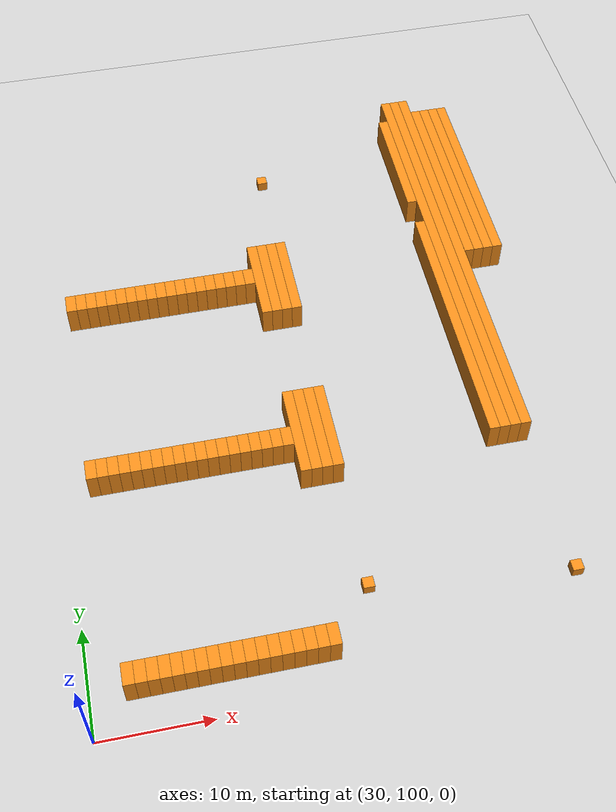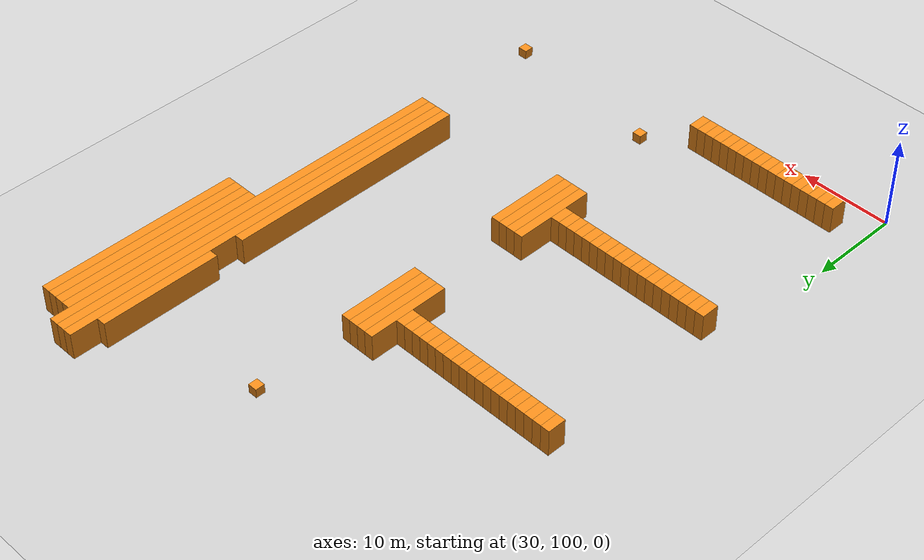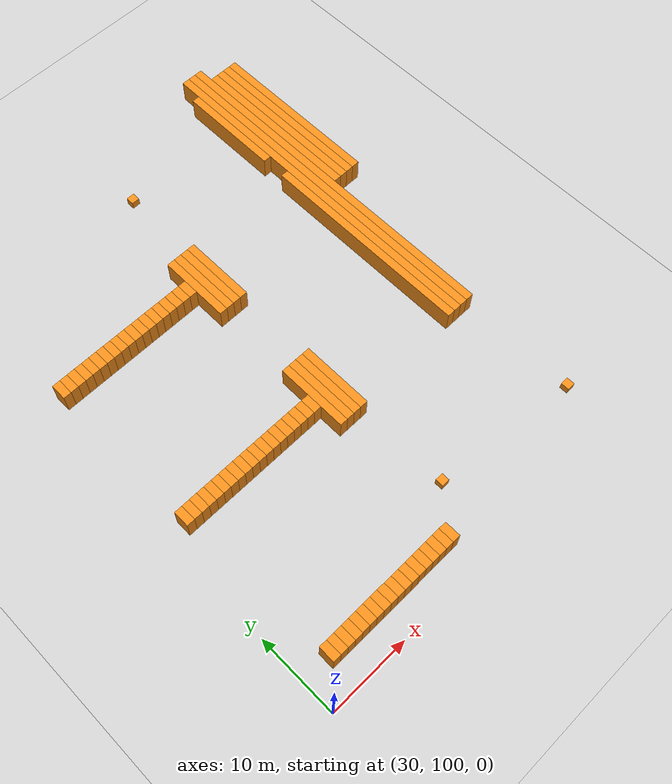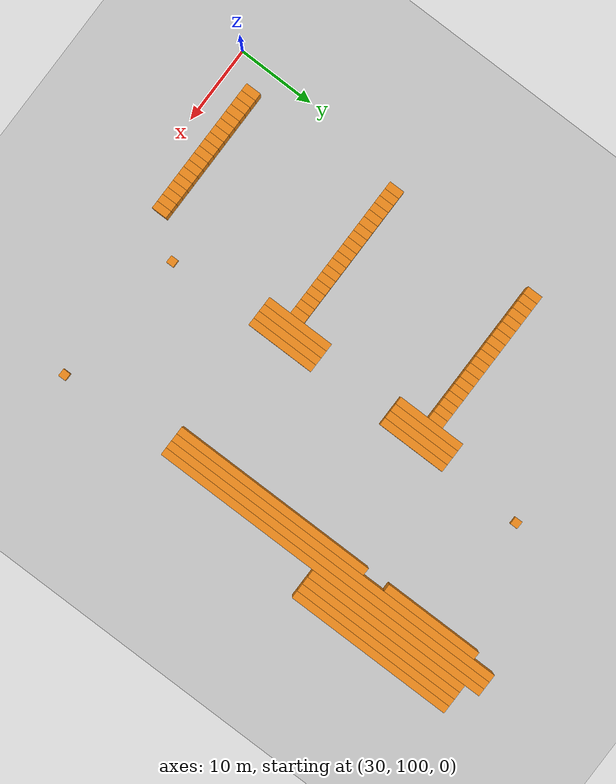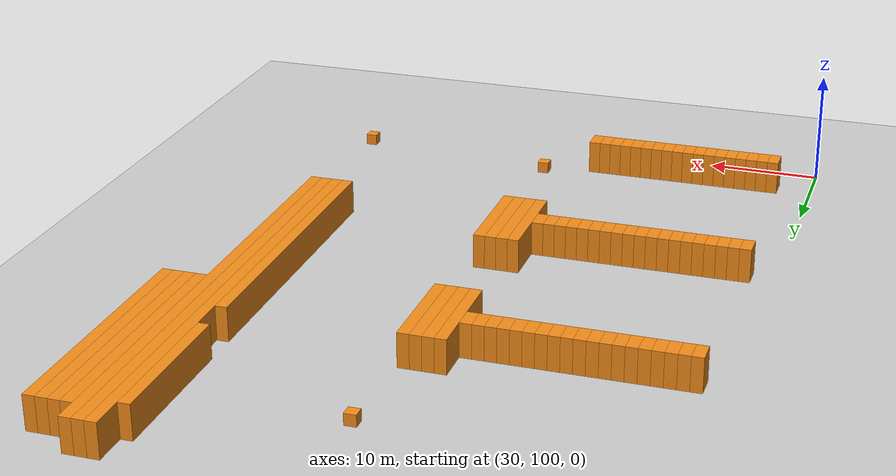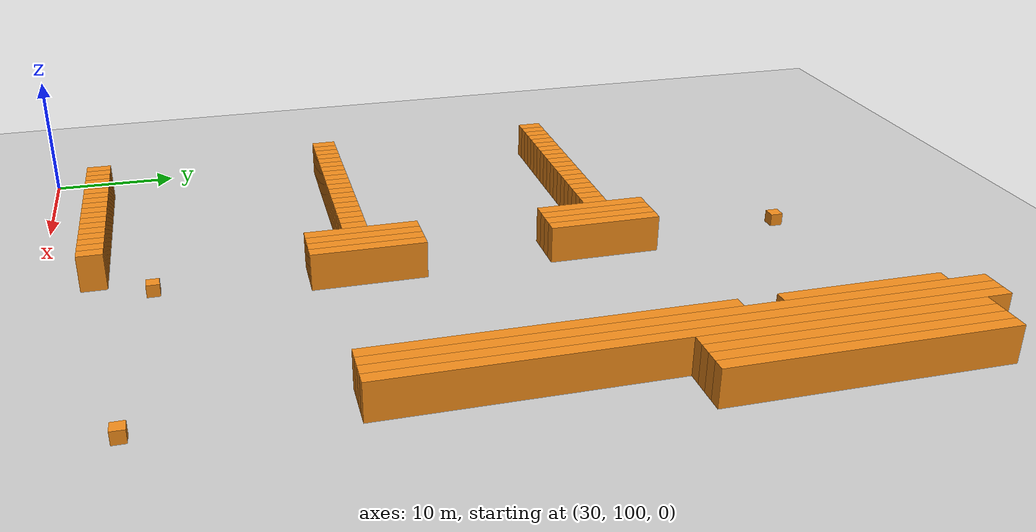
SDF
<sdf version="1.6">
 <world name="default">
  <include><uri>model://ground_plane</uri></include>
  <model name="unit_box_335">
   <pose>32.50   124.00     1.50 0 0 0</pose>
   <static>1</static>
   <link name="link">
    <inertial>
     <mass>5000</mass>
     <inertia><ixx>200</ixx><ixy>0</ixy><ixz>0</ixz><iyy>200</iyy><iyz>0</iyz><izz>200</izz></inertia>
    </inertial>
    <collision name="collision"><geometry><box><size>1 2 3</size></box></geometry></collision>
    <visual name="visual">
     <geometry><box><size>1 2 3</size></box></geometry>
     <material>
      <script><name>Gazebo/Orange</name><uri>file://media/materials/scripts/gazebo.material</uri></script>
     </material>
    </visual>
   </link>
  </model>
  <model name="unit_box_336">
   <pose>32.50   144.00     1.50 0 0 0</pose>
   <static>1</static>
   <link name="link">
    <inertial>
     <mass>5000</mass>
     <inertia><ixx>200</ixx><ixy>0</ixy><ixz>0</ixz><iyy>200</iyy><iyz>0</iyz><izz>200</izz></inertia>
    </inertial>
    <collision name="collision"><geometry><box><size>1 2 3</size></box></geometry></collision>
    <visual name="visual">
     <geometry><box><size>1 2 3</size></box></geometry>
     <material>
      <script><name>Gazebo/Orange</name><uri>file://media/materials/scripts/gazebo.material</uri></script>
     </material>
    </visual>
   </link>
  </model>
  <model name="unit_box_347">
   <pose>33.50   104.00     1.50 0 0 0</pose>
   <static>1</static>
   <link name="link">
    <inertial>
     <mass>5000</mass>
     <inertia><ixx>200</ixx><ixy>0</ixy><ixz>0</ixz><iyy>200</iyy><iyz>0</iyz><izz>200</izz></inertia>
    </inertial>
    <collision name="collision"><geometry><box><size>1 2 3</size></box></geometry></collision>
    <visual name="visual">
     <geometry><box><size>1 2 3</size></box></geometry>
     <material>
      <script><name>Gazebo/Orange</name><uri>file://media/materials/scripts/gazebo.material</uri></script>
     </material>
    </visual>
   </link>
  </model>
  <model name="unit_box_348">
   <pose>33.50   124.00     1.50 0 0 0</pose>
   <static>1</static>
   <link name="link">
    <inertial>
     <mass>5000</mass>
     <inertia><ixx>200</ixx><ixy>0</ixy><ixz>0</ixz><iyy>200</iyy><iyz>0</iyz><izz>200</izz></inertia>
    </inertial>
    <collision name="collision"><geometry><box><size>1 2 3</size></box></geometry></collision>
    <visual name="visual">
     <geometry><box><size>1 2 3</size></box></geometry>
     <material>
      <script><name>Gazebo/Orange</name><uri>file://media/materials/scripts/gazebo.material</uri></script>
     </material>
    </visual>
   </link>
  </model>
  <model name="unit_box_349">
   <pose>33.50   144.00     1.50 0 0 0</pose>
   <static>1</static>
   <link name="link">
    <inertial>
     <mass>5000</mass>
     <inertia><ixx>200</ixx><ixy>0</ixy><ixz>0</ixz><iyy>200</iyy><iyz>0</iyz><izz>200</izz></inertia>
    </inertial>
    <collision name="collision"><geometry><box><size>1 2 3</size></box></geometry></collision>
    <visual name="visual">
     <geometry><box><size>1 2 3</size></box></geometry>
     <material>
      <script><name>Gazebo/Orange</name><uri>file://media/materials/scripts/gazebo.material</uri></script>
     </material>
    </visual>
   </link>
  </model>
  <model name="unit_box_360">
   <pose>34.50   104.00     1.50 0 0 0</pose>
   <static>1</static>
   <link name="link">
    <inertial>
     <mass>5000</mass>
     <inertia><ixx>200</ixx><ixy>0</ixy><ixz>0</ixz><iyy>200</iyy><iyz>0</iyz><izz>200</izz></inertia>
    </inertial>
    <collision name="collision"><geometry><box><size>1 2 3</size></box></geometry></collision>
    <visual name="visual">
     <geometry><box><size>1 2 3</size></box></geometry>
     <material>
      <script><name>Gazebo/Orange</name><uri>file://media/materials/scripts/gazebo.material</uri></script>
     </material>
    </visual>
   </link>
  </model>
  <model name="unit_box_361">
   <pose>34.50   124.00     1.50 0 0 0</pose>
   <static>1</static>
   <link name="link">
    <inertial>
     <mass>5000</mass>
     <inertia><ixx>200</ixx><ixy>0</ixy><ixz>0</ixz><iyy>200</iyy><iyz>0</iyz><izz>200</izz></inertia>
    </inertial>
    <collision name="collision"><geometry><box><size>1 2 3</size></box></geometry></collision>
    <visual name="visual">
     <geometry><box><size>1 2 3</size></box></geometry>
     <material>
      <script><name>Gazebo/Orange</name><uri>file://media/materials/scripts/gazebo.material</uri></script>
     </material>
    </visual>
   </link>
  </model>
  <model name="unit_box_362">
   <pose>34.50   144.00     1.50 0 0 0</pose>
   <static>1</static>
   <link name="link">
    <inertial>
     <mass>5000</mass>
     <inertia><ixx>200</ixx><ixy>0</ixy><ixz>0</ixz><iyy>200</iyy><iyz>0</iyz><izz>200</izz></inertia>
    </inertial>
    <collision name="collision"><geometry><box><size>1 2 3</size></box></geometry></collision>
    <visual name="visual">
     <geometry><box><size>1 2 3</size></box></geometry>
     <material>
      <script><name>Gazebo/Orange</name><uri>file://media/materials/scripts/gazebo.material</uri></script>
     </material>
    </visual>
   </link>
  </model>
  <model name="unit_box_373">
   <pose>35.50   104.00     1.50 0 0 0</pose>
   <static>1</static>
   <link name="link">
    <inertial>
     <mass>5000</mass>
     <inertia><ixx>200</ixx><ixy>0</ixy><ixz>0</ixz><iyy>200</iyy><iyz>0</iyz><izz>200</izz></inertia>
    </inertial>
    <collision name="collision"><geometry><box><size>1 2 3</size></box></geometry></collision>
    <visual name="visual">
     <geometry><box><size>1 2 3</size></box></geometry>
     <material>
      <script><name>Gazebo/Orange</name><uri>file://media/materials/scripts/gazebo.material</uri></script>
     </material>
    </visual>
   </link>
  </model>
  <model name="unit_box_374">
   <pose>35.50   124.00     1.50 0 0 0</pose>
   <static>1</static>
   <link name="link">
    <inertial>
     <mass>5000</mass>
     <inertia><ixx>200</ixx><ixy>0</ixy><ixz>0</ixz><iyy>200</iyy><iyz>0</iyz><izz>200</izz></inertia>
    </inertial>
    <collision name="collision"><geometry><box><size>1 2 3</size></box></geometry></collision>
    <visual name="visual">
     <geometry><box><size>1 2 3</size></box></geometry>
     <material>
      <script><name>Gazebo/Orange</name><uri>file://media/materials/scripts/gazebo.material</uri></script>
     </material>
    </visual>
   </link>
  </model>
  <model name="unit_box_375">
   <pose>35.50   144.00     1.50 0 0 0</pose>
   <static>1</static>
   <link name="link">
    <inertial>
     <mass>5000</mass>
     <inertia><ixx>200</ixx><ixy>0</ixy><ixz>0</ixz><iyy>200</iyy><iyz>0</iyz><izz>200</izz></inertia>
    </inertial>
    <collision name="collision"><geometry><box><size>1 2 3</size></box></geometry></collision>
    <visual name="visual">
     <geometry><box><size>1 2 3</size></box></geometry>
     <material>
      <script><name>Gazebo/Orange</name><uri>file://media/materials/scripts/gazebo.material</uri></script>
     </material>
    </visual>
   </link>
  </model>
  <model name="unit_box_386">
   <pose>36.50   104.00     1.50 0 0 0</pose>
   <static>1</static>
   <link name="link">
    <inertial>
     <mass>5000</mass>
     <inertia><ixx>200</ixx><ixy>0</ixy><ixz>0</ixz><iyy>200</iyy><iyz>0</iyz><izz>200</izz></inertia>
    </inertial>
    <collision name="collision"><geometry><box><size>1 2 3</size></box></geometry></collision>
    <visual name="visual">
     <geometry><box><size>1 2 3</size></box></geometry>
     <material>
      <script><name>Gazebo/Orange</name><uri>file://media/materials/scripts/gazebo.material</uri></script>
     </material>
    </visual>
   </link>
  </model>
  <model name="unit_box_387">
   <pose>36.50   124.00     1.50 0 0 0</pose>
   <static>1</static>
   <link name="link">
    <inertial>
     <mass>5000</mass>
     <inertia><ixx>200</ixx><ixy>0</ixy><ixz>0</ixz><iyy>200</iyy><iyz>0</iyz><izz>200</izz></inertia>
    </inertial>
    <collision name="collision"><geometry><box><size>1 2 3</size></box></geometry></collision>
    <visual name="visual">
     <geometry><box><size>1 2 3</size></box></geometry>
     <material>
      <script><name>Gazebo/Orange</name><uri>file://media/materials/scripts/gazebo.material</uri></script>
     </material>
    </visual>
   </link>
  </model>
  <model name="unit_box_388">
   <pose>36.50   144.00     1.50 0 0 0</pose>
   <static>1</static>
   <link name="link">
    <inertial>
     <mass>5000</mass>
     <inertia><ixx>200</ixx><ixy>0</ixy><ixz>0</ixz><iyy>200</iyy><iyz>0</iyz><izz>200</izz></inertia>
    </inertial>
    <collision name="collision"><geometry><box><size>1 2 3</size></box></geometry></collision>
    <visual name="visual">
     <geometry><box><size>1 2 3</size></box></geometry>
     <material>
      <script><name>Gazebo/Orange</name><uri>file://media/materials/scripts/gazebo.material</uri></script>
     </material>
    </visual>
   </link>
  </model>
  <model name="unit_box_399">
   <pose>37.50   104.00     1.50 0 0 0</pose>
   <static>1</static>
   <link name="link">
    <inertial>
     <mass>5000</mass>
     <inertia><ixx>200</ixx><ixy>0</ixy><ixz>0</ixz><iyy>200</iyy><iyz>0</iyz><izz>200</izz></inertia>
    </inertial>
    <collision name="collision"><geometry><box><size>1 2 3</size></box></geometry></collision>
    <visual name="visual">
     <geometry><box><size>1 2 3</size></box></geometry>
     <material>
      <script><name>Gazebo/Orange</name><uri>file://media/materials/scripts/gazebo.material</uri></script>
     </material>
    </visual>
   </link>
  </model>
  <model name="unit_box_400">
   <pose>37.50   124.00     1.50 0 0 0</pose>
   <static>1</static>
   <link name="link">
    <inertial>
     <mass>5000</mass>
     <inertia><ixx>200</ixx><ixy>0</ixy><ixz>0</ixz><iyy>200</iyy><iyz>0</iyz><izz>200</izz></inertia>
    </inertial>
    <collision name="collision"><geometry><box><size>1 2 3</size></box></geometry></collision>
    <visual name="visual">
     <geometry><box><size>1 2 3</size></box></geometry>
     <material>
      <script><name>Gazebo/Orange</name><uri>file://media/materials/scripts/gazebo.material</uri></script>
     </material>
    </visual>
   </link>
  </model>
  <model name="unit_box_401">
   <pose>37.50   144.00     1.50 0 0 0</pose>
   <static>1</static>
   <link name="link">
    <inertial>
     <mass>5000</mass>
     <inertia><ixx>200</ixx><ixy>0</ixy><ixz>0</ixz><iyy>200</iyy><iyz>0</iyz><izz>200</izz></inertia>
    </inertial>
    <collision name="collision"><geometry><box><size>1 2 3</size></box></geometry></collision>
    <visual name="visual">
     <geometry><box><size>1 2 3</size></box></geometry>
     <material>
      <script><name>Gazebo/Orange</name><uri>file://media/materials/scripts/gazebo.material</uri></script>
     </material>
    </visual>
   </link>
  </model>
  <model name="unit_box_412">
   <pose>38.50   104.00     1.50 0 0 0</pose>
   <static>1</static>
   <link name="link">
    <inertial>
     <mass>5000</mass>
     <inertia><ixx>200</ixx><ixy>0</ixy><ixz>0</ixz><iyy>200</iyy><iyz>0</iyz><izz>200</izz></inertia>
    </inertial>
    <collision name="collision"><geometry><box><size>1 2 3</size></box></geometry></collision>
    <visual name="visual">
     <geometry><box><size>1 2 3</size></box></geometry>
     <material>
      <script><name>Gazebo/Orange</name><uri>file://media/materials/scripts/gazebo.material</uri></script>
     </material>
    </visual>
   </link>
  </model>
  <model name="unit_box_413">
   <pose>38.50   124.00     1.50 0 0 0</pose>
   <static>1</static>
   <link name="link">
    <inertial>
     <mass>5000</mass>
     <inertia><ixx>200</ixx><ixy>0</ixy><ixz>0</ixz><iyy>200</iyy><iyz>0</iyz><izz>200</izz></inertia>
    </inertial>
    <collision name="collision"><geometry><box><size>1 2 3</size></box></geometry></collision>
    <visual name="visual">
     <geometry><box><size>1 2 3</size></box></geometry>
     <material>
      <script><name>Gazebo/Orange</name><uri>file://media/materials/scripts/gazebo.material</uri></script>
     </material>
    </visual>
   </link>
  </model>
  <model name="unit_box_414">
   <pose>38.50   144.00     1.50 0 0 0</pose>
   <static>1</static>
   <link name="link">
    <inertial>
     <mass>5000</mass>
     <inertia><ixx>200</ixx><ixy>0</ixy><ixz>0</ixz><iyy>200</iyy><iyz>0</iyz><izz>200</izz></inertia>
    </inertial>
    <collision name="collision"><geometry><box><size>1 2 3</size></box></geometry></collision>
    <visual name="visual">
     <geometry><box><size>1 2 3</size></box></geometry>
     <material>
      <script><name>Gazebo/Orange</name><uri>file://media/materials/scripts/gazebo.material</uri></script>
     </material>
    </visual>
   </link>
  </model>
  <model name="unit_box_425">
   <pose>39.50   104.00     1.50 0 0 0</pose>
   <static>1</static>
   <link name="link">
    <inertial>
     <mass>5000</mass>
     <inertia><ixx>200</ixx><ixy>0</ixy><ixz>0</ixz><iyy>200</iyy><iyz>0</iyz><izz>200</izz></inertia>
    </inertial>
    <collision name="collision"><geometry><box><size>1 2 3</size></box></geometry></collision>
    <visual name="visual">
     <geometry><box><size>1 2 3</size></box></geometry>
     <material>
      <script><name>Gazebo/Orange</name><uri>file://media/materials/scripts/gazebo.material</uri></script>
     </material>
    </visual>
   </link>
  </model>
  <model name="unit_box_426">
   <pose>39.50   124.00     1.50 0 0 0</pose>
   <static>1</static>
   <link name="link">
    <inertial>
     <mass>5000</mass>
     <inertia><ixx>200</ixx><ixy>0</ixy><ixz>0</ixz><iyy>200</iyy><iyz>0</iyz><izz>200</izz></inertia>
    </inertial>
    <collision name="collision"><geometry><box><size>1 2 3</size></box></geometry></collision>
    <visual name="visual">
     <geometry><box><size>1 2 3</size></box></geometry>
     <material>
      <script><name>Gazebo/Orange</name><uri>file://media/materials/scripts/gazebo.material</uri></script>
     </material>
    </visual>
   </link>
  </model>
  <model name="unit_box_427">
   <pose>39.50   144.00     1.50 0 0 0</pose>
   <static>1</static>
   <link name="link">
    <inertial>
     <mass>5000</mass>
     <inertia><ixx>200</ixx><ixy>0</ixy><ixz>0</ixz><iyy>200</iyy><iyz>0</iyz><izz>200</izz></inertia>
    </inertial>
    <collision name="collision"><geometry><box><size>1 2 3</size></box></geometry></collision>
    <visual name="visual">
     <geometry><box><size>1 2 3</size></box></geometry>
     <material>
      <script><name>Gazebo/Orange</name><uri>file://media/materials/scripts/gazebo.material</uri></script>
     </material>
    </visual>
   </link>
  </model>
  <model name="unit_box_438">
   <pose>40.50   104.00     1.50 0 0 0</pose>
   <static>1</static>
   <link name="link">
    <inertial>
     <mass>5000</mass>
     <inertia><ixx>200</ixx><ixy>0</ixy><ixz>0</ixz><iyy>200</iyy><iyz>0</iyz><izz>200</izz></inertia>
    </inertial>
    <collision name="collision"><geometry><box><size>1 2 3</size></box></geometry></collision>
    <visual name="visual">
     <geometry><box><size>1 2 3</size></box></geometry>
     <material>
      <script><name>Gazebo/Orange</name><uri>file://media/materials/scripts/gazebo.material</uri></script>
     </material>
    </visual>
   </link>
  </model>
  <model name="unit_box_439">
   <pose>40.50   124.00     1.50 0 0 0</pose>
   <static>1</static>
   <link name="link">
    <inertial>
     <mass>5000</mass>
     <inertia><ixx>200</ixx><ixy>0</ixy><ixz>0</ixz><iyy>200</iyy><iyz>0</iyz><izz>200</izz></inertia>
    </inertial>
    <collision name="collision"><geometry><box><size>1 2 3</size></box></geometry></collision>
    <visual name="visual">
     <geometry><box><size>1 2 3</size></box></geometry>
     <material>
      <script><name>Gazebo/Orange</name><uri>file://media/materials/scripts/gazebo.material</uri></script>
     </material>
    </visual>
   </link>
  </model>
  <model name="unit_box_440">
   <pose>40.50   144.00     1.50 0 0 0</pose>
   <static>1</static>
   <link name="link">
    <inertial>
     <mass>5000</mass>
     <inertia><ixx>200</ixx><ixy>0</ixy><ixz>0</ixz><iyy>200</iyy><iyz>0</iyz><izz>200</izz></inertia>
    </inertial>
    <collision name="collision"><geometry><box><size>1 2 3</size></box></geometry></collision>
    <visual name="visual">
     <geometry><box><size>1 2 3</size></box></geometry>
     <material>
      <script><name>Gazebo/Orange</name><uri>file://media/materials/scripts/gazebo.material</uri></script>
     </material>
    </visual>
   </link>
  </model>
  <model name="unit_box_451">
   <pose>41.50   104.00     1.50 0 0 0</pose>
   <static>1</static>
   <link name="link">
    <inertial>
     <mass>5000</mass>
     <inertia><ixx>200</ixx><ixy>0</ixy><ixz>0</ixz><iyy>200</iyy><iyz>0</iyz><izz>200</izz></inertia>
    </inertial>
    <collision name="collision"><geometry><box><size>1 2 3</size></box></geometry></collision>
    <visual name="visual">
     <geometry><box><size>1 2 3</size></box></geometry>
     <material>
      <script><name>Gazebo/Orange</name><uri>file://media/materials/scripts/gazebo.material</uri></script>
     </material>
    </visual>
   </link>
  </model>
  <model name="unit_box_452">
   <pose>41.50   124.00     1.50 0 0 0</pose>
   <static>1</static>
   <link name="link">
    <inertial>
     <mass>5000</mass>
     <inertia><ixx>200</ixx><ixy>0</ixy><ixz>0</ixz><iyy>200</iyy><iyz>0</iyz><izz>200</izz></inertia>
    </inertial>
    <collision name="collision"><geometry><box><size>1 2 3</size></box></geometry></collision>
    <visual name="visual">
     <geometry><box><size>1 2 3</size></box></geometry>
     <material>
      <script><name>Gazebo/Orange</name><uri>file://media/materials/scripts/gazebo.material</uri></script>
     </material>
    </visual>
   </link>
  </model>
  <model name="unit_box_453">
   <pose>41.50   144.00     1.50 0 0 0</pose>
   <static>1</static>
   <link name="link">
    <inertial>
     <mass>5000</mass>
     <inertia><ixx>200</ixx><ixy>0</ixy><ixz>0</ixz><iyy>200</iyy><iyz>0</iyz><izz>200</izz></inertia>
    </inertial>
    <collision name="collision"><geometry><box><size>1 2 3</size></box></geometry></collision>
    <visual name="visual">
     <geometry><box><size>1 2 3</size></box></geometry>
     <material>
      <script><name>Gazebo/Orange</name><uri>file://media/materials/scripts/gazebo.material</uri></script>
     </material>
    </visual>
   </link>
  </model>
  <model name="unit_box_464">
   <pose>42.50   104.00     1.50 0 0 0</pose>
   <static>1</static>
   <link name="link">
    <inertial>
     <mass>5000</mass>
     <inertia><ixx>200</ixx><ixy>0</ixy><ixz>0</ixz><iyy>200</iyy><iyz>0</iyz><izz>200</izz></inertia>
    </inertial>
    <collision name="collision"><geometry><box><size>1 2 3</size></box></geometry></collision>
    <visual name="visual">
     <geometry><box><size>1 2 3</size></box></geometry>
     <material>
      <script><name>Gazebo/Orange</name><uri>file://media/materials/scripts/gazebo.material</uri></script>
     </material>
    </visual>
   </link>
  </model>
  <model name="unit_box_465">
   <pose>42.50   124.00     1.50 0 0 0</pose>
   <static>1</static>
   <link name="link">
    <inertial>
     <mass>5000</mass>
     <inertia><ixx>200</ixx><ixy>0</ixy><ixz>0</ixz><iyy>200</iyy><iyz>0</iyz><izz>200</izz></inertia>
    </inertial>
    <collision name="collision"><geometry><box><size>1 2 3</size></box></geometry></collision>
    <visual name="visual">
     <geometry><box><size>1 2 3</size></box></geometry>
     <material>
      <script><name>Gazebo/Orange</name><uri>file://media/materials/scripts/gazebo.material</uri></script>
     </material>
    </visual>
   </link>
  </model>
  <model name="unit_box_466">
   <pose>42.50   144.00     1.50 0 0 0</pose>
   <static>1</static>
   <link name="link">
    <inertial>
     <mass>5000</mass>
     <inertia><ixx>200</ixx><ixy>0</ixy><ixz>0</ixz><iyy>200</iyy><iyz>0</iyz><izz>200</izz></inertia>
    </inertial>
    <collision name="collision"><geometry><box><size>1 2 3</size></box></geometry></collision>
    <visual name="visual">
     <geometry><box><size>1 2 3</size></box></geometry>
     <material>
      <script><name>Gazebo/Orange</name><uri>file://media/materials/scripts/gazebo.material</uri></script>
     </material>
    </visual>
   </link>
  </model>
  <model name="unit_box_477">
   <pose>43.50   104.00     1.50 0 0 0</pose>
   <static>1</static>
   <link name="link">
    <inertial>
     <mass>5000</mass>
     <inertia><ixx>200</ixx><ixy>0</ixy><ixz>0</ixz><iyy>200</iyy><iyz>0</iyz><izz>200</izz></inertia>
    </inertial>
    <collision name="collision"><geometry><box><size>1 2 3</size></box></geometry></collision>
    <visual name="visual">
     <geometry><box><size>1 2 3</size></box></geometry>
     <material>
      <script><name>Gazebo/Orange</name><uri>file://media/materials/scripts/gazebo.material</uri></script>
     </material>
    </visual>
   </link>
  </model>
  <model name="unit_box_478">
   <pose>43.50   124.00     1.50 0 0 0</pose>
   <static>1</static>
   <link name="link">
    <inertial>
     <mass>5000</mass>
     <inertia><ixx>200</ixx><ixy>0</ixy><ixz>0</ixz><iyy>200</iyy><iyz>0</iyz><izz>200</izz></inertia>
    </inertial>
    <collision name="collision"><geometry><box><size>1 2 3</size></box></geometry></collision>
    <visual name="visual">
     <geometry><box><size>1 2 3</size></box></geometry>
     <material>
      <script><name>Gazebo/Orange</name><uri>file://media/materials/scripts/gazebo.material</uri></script>
     </material>
    </visual>
   </link>
  </model>
  <model name="unit_box_479">
   <pose>43.50   144.00     1.50 0 0 0</pose>
   <static>1</static>
   <link name="link">
    <inertial>
     <mass>5000</mass>
     <inertia><ixx>200</ixx><ixy>0</ixy><ixz>0</ixz><iyy>200</iyy><iyz>0</iyz><izz>200</izz></inertia>
    </inertial>
    <collision name="collision"><geometry><box><size>1 2 3</size></box></geometry></collision>
    <visual name="visual">
     <geometry><box><size>1 2 3</size></box></geometry>
     <material>
      <script><name>Gazebo/Orange</name><uri>file://media/materials/scripts/gazebo.material</uri></script>
     </material>
    </visual>
   </link>
  </model>
  <model name="unit_box_490">
   <pose>44.50   104.00     1.50 0 0 0</pose>
   <static>1</static>
   <link name="link">
    <inertial>
     <mass>5000</mass>
     <inertia><ixx>200</ixx><ixy>0</ixy><ixz>0</ixz><iyy>200</iyy><iyz>0</iyz><izz>200</izz></inertia>
    </inertial>
    <collision name="collision"><geometry><box><size>1 2 3</size></box></geometry></collision>
    <visual name="visual">
     <geometry><box><size>1 2 3</size></box></geometry>
     <material>
      <script><name>Gazebo/Orange</name><uri>file://media/materials/scripts/gazebo.material</uri></script>
     </material>
    </visual>
   </link>
  </model>
  <model name="unit_box_491">
   <pose>44.50   124.00     1.50 0 0 0</pose>
   <static>1</static>
   <link name="link">
    <inertial>
     <mass>5000</mass>
     <inertia><ixx>200</ixx><ixy>0</ixy><ixz>0</ixz><iyy>200</iyy><iyz>0</iyz><izz>200</izz></inertia>
    </inertial>
    <collision name="collision"><geometry><box><size>1 2 3</size></box></geometry></collision>
    <visual name="visual">
     <geometry><box><size>1 2 3</size></box></geometry>
     <material>
      <script><name>Gazebo/Orange</name><uri>file://media/materials/scripts/gazebo.material</uri></script>
     </material>
    </visual>
   </link>
  </model>
  <model name="unit_box_492">
   <pose>44.50   144.00     1.50 0 0 0</pose>
   <static>1</static>
   <link name="link">
    <inertial>
     <mass>5000</mass>
     <inertia><ixx>200</ixx><ixy>0</ixy><ixz>0</ixz><iyy>200</iyy><iyz>0</iyz><izz>200</izz></inertia>
    </inertial>
    <collision name="collision"><geometry><box><size>1 2 3</size></box></geometry></collision>
    <visual name="visual">
     <geometry><box><size>1 2 3</size></box></geometry>
     <material>
      <script><name>Gazebo/Orange</name><uri>file://media/materials/scripts/gazebo.material</uri></script>
     </material>
    </visual>
   </link>
  </model>
  <model name="unit_box_503">
   <pose>45.50   104.00     1.50 0 0 0</pose>
   <static>1</static>
   <link name="link">
    <inertial>
     <mass>5000</mass>
     <inertia><ixx>200</ixx><ixy>0</ixy><ixz>0</ixz><iyy>200</iyy><iyz>0</iyz><izz>200</izz></inertia>
    </inertial>
    <collision name="collision"><geometry><box><size>1 2 3</size></box></geometry></collision>
    <visual name="visual">
     <geometry><box><size>1 2 3</size></box></geometry>
     <material>
      <script><name>Gazebo/Orange</name><uri>file://media/materials/scripts/gazebo.material</uri></script>
     </material>
    </visual>
   </link>
  </model>
  <model name="unit_box_504">
   <pose>45.50   124.00     1.50 0 0 0</pose>
   <static>1</static>
   <link name="link">
    <inertial>
     <mass>5000</mass>
     <inertia><ixx>200</ixx><ixy>0</ixy><ixz>0</ixz><iyy>200</iyy><iyz>0</iyz><izz>200</izz></inertia>
    </inertial>
    <collision name="collision"><geometry><box><size>1 2 3</size></box></geometry></collision>
    <visual name="visual">
     <geometry><box><size>1 2 3</size></box></geometry>
     <material>
      <script><name>Gazebo/Orange</name><uri>file://media/materials/scripts/gazebo.material</uri></script>
     </material>
    </visual>
   </link>
  </model>
  <model name="unit_box_505">
   <pose>45.50   144.00     1.50 0 0 0</pose>
   <static>1</static>
   <link name="link">
    <inertial>
     <mass>5000</mass>
     <inertia><ixx>200</ixx><ixy>0</ixy><ixz>0</ixz><iyy>200</iyy><iyz>0</iyz><izz>200</izz></inertia>
    </inertial>
    <collision name="collision"><geometry><box><size>1 2 3</size></box></geometry></collision>
    <visual name="visual">
     <geometry><box><size>1 2 3</size></box></geometry>
     <material>
      <script><name>Gazebo/Orange</name><uri>file://media/materials/scripts/gazebo.material</uri></script>
     </material>
    </visual>
   </link>
  </model>
  <model name="unit_box_516">
   <pose>46.50   104.00     1.50 0 0 0</pose>
   <static>1</static>
   <link name="link">
    <inertial>
     <mass>5000</mass>
     <inertia><ixx>200</ixx><ixy>0</ixy><ixz>0</ixz><iyy>200</iyy><iyz>0</iyz><izz>200</izz></inertia>
    </inertial>
    <collision name="collision"><geometry><box><size>1 2 3</size></box></geometry></collision>
    <visual name="visual">
     <geometry><box><size>1 2 3</size></box></geometry>
     <material>
      <script><name>Gazebo/Orange</name><uri>file://media/materials/scripts/gazebo.material</uri></script>
     </material>
    </visual>
   </link>
  </model>
  <model name="unit_box_517">
   <pose>46.50   124.00     1.50 0 0 0</pose>
   <static>1</static>
   <link name="link">
    <inertial>
     <mass>5000</mass>
     <inertia><ixx>200</ixx><ixy>0</ixy><ixz>0</ixz><iyy>200</iyy><iyz>0</iyz><izz>200</izz></inertia>
    </inertial>
    <collision name="collision"><geometry><box><size>1 2 3</size></box></geometry></collision>
    <visual name="visual">
     <geometry><box><size>1 2 3</size></box></geometry>
     <material>
      <script><name>Gazebo/Orange</name><uri>file://media/materials/scripts/gazebo.material</uri></script>
     </material>
    </visual>
   </link>
  </model>
  <model name="unit_box_518">
   <pose>46.50   144.00     1.50 0 0 0</pose>
   <static>1</static>
   <link name="link">
    <inertial>
     <mass>5000</mass>
     <inertia><ixx>200</ixx><ixy>0</ixy><ixz>0</ixz><iyy>200</iyy><iyz>0</iyz><izz>200</izz></inertia>
    </inertial>
    <collision name="collision"><geometry><box><size>1 2 3</size></box></geometry></collision>
    <visual name="visual">
     <geometry><box><size>1 2 3</size></box></geometry>
     <material>
      <script><name>Gazebo/Orange</name><uri>file://media/materials/scripts/gazebo.material</uri></script>
     </material>
    </visual>
   </link>
  </model>
  <model name="unit_box_529">
   <pose>47.50   104.00     1.50 0 0 0</pose>
   <static>1</static>
   <link name="link">
    <inertial>
     <mass>5000</mass>
     <inertia><ixx>200</ixx><ixy>0</ixy><ixz>0</ixz><iyy>200</iyy><iyz>0</iyz><izz>200</izz></inertia>
    </inertial>
    <collision name="collision"><geometry><box><size>1 2 3</size></box></geometry></collision>
    <visual name="visual">
     <geometry><box><size>1 2 3</size></box></geometry>
     <material>
      <script><name>Gazebo/Orange</name><uri>file://media/materials/scripts/gazebo.material</uri></script>
     </material>
    </visual>
   </link>
  </model>
  <model name="unit_box_530">
   <pose>47.50   124.00     1.50 0 0 0</pose>
   <static>1</static>
   <link name="link">
    <inertial>
     <mass>5000</mass>
     <inertia><ixx>200</ixx><ixy>0</ixy><ixz>0</ixz><iyy>200</iyy><iyz>0</iyz><izz>200</izz></inertia>
    </inertial>
    <collision name="collision"><geometry><box><size>1 2 3</size></box></geometry></collision>
    <visual name="visual">
     <geometry><box><size>1 2 3</size></box></geometry>
     <material>
      <script><name>Gazebo/Orange</name><uri>file://media/materials/scripts/gazebo.material</uri></script>
     </material>
    </visual>
   </link>
  </model>
  <model name="unit_box_531">
   <pose>47.50   144.00     1.50 0 0 0</pose>
   <static>1</static>
   <link name="link">
    <inertial>
     <mass>5000</mass>
     <inertia><ixx>200</ixx><ixy>0</ixy><ixz>0</ixz><iyy>200</iyy><iyz>0</iyz><izz>200</izz></inertia>
    </inertial>
    <collision name="collision"><geometry><box><size>1 2 3</size></box></geometry></collision>
    <visual name="visual">
     <geometry><box><size>1 2 3</size></box></geometry>
     <material>
      <script><name>Gazebo/Orange</name><uri>file://media/materials/scripts/gazebo.material</uri></script>
     </material>
    </visual>
   </link>
  </model>
  <model name="unit_box_542">
   <pose>48.50   104.00     1.50 0 0 0</pose>
   <static>1</static>
   <link name="link">
    <inertial>
     <mass>5000</mass>
     <inertia><ixx>200</ixx><ixy>0</ixy><ixz>0</ixz><iyy>200</iyy><iyz>0</iyz><izz>200</izz></inertia>
    </inertial>
    <collision name="collision"><geometry><box><size>1 2 3</size></box></geometry></collision>
    <visual name="visual">
     <geometry><box><size>1 2 3</size></box></geometry>
     <material>
      <script><name>Gazebo/Orange</name><uri>file://media/materials/scripts/gazebo.material</uri></script>
     </material>
    </visual>
   </link>
  </model>
  <model name="unit_box_543">
   <pose>48.50   124.00     1.50 0 0 0</pose>
   <static>1</static>
   <link name="link">
    <inertial>
     <mass>5000</mass>
     <inertia><ixx>200</ixx><ixy>0</ixy><ixz>0</ixz><iyy>200</iyy><iyz>0</iyz><izz>200</izz></inertia>
    </inertial>
    <collision name="collision"><geometry><box><size>1 2 3</size></box></geometry></collision>
    <visual name="visual">
     <geometry><box><size>1 2 3</size></box></geometry>
     <material>
      <script><name>Gazebo/Orange</name><uri>file://media/materials/scripts/gazebo.material</uri></script>
     </material>
    </visual>
   </link>
  </model>
  <model name="unit_box_544">
   <pose>48.50   144.00     1.50 0 0 0</pose>
   <static>1</static>
   <link name="link">
    <inertial>
     <mass>5000</mass>
     <inertia><ixx>200</ixx><ixy>0</ixy><ixz>0</ixz><iyy>200</iyy><iyz>0</iyz><izz>200</izz></inertia>
    </inertial>
    <collision name="collision"><geometry><box><size>1 2 3</size></box></geometry></collision>
    <visual name="visual">
     <geometry><box><size>1 2 3</size></box></geometry>
     <material>
      <script><name>Gazebo/Orange</name><uri>file://media/materials/scripts/gazebo.material</uri></script>
     </material>
    </visual>
   </link>
  </model>
  <model name="unit_box_555">
   <pose>49.50   104.00     1.50 0 0 0</pose>
   <static>1</static>
   <link name="link">
    <inertial>
     <mass>5000</mass>
     <inertia><ixx>200</ixx><ixy>0</ixy><ixz>0</ixz><iyy>200</iyy><iyz>0</iyz><izz>200</izz></inertia>
    </inertial>
    <collision name="collision"><geometry><box><size>1 2 3</size></box></geometry></collision>
    <visual name="visual">
     <geometry><box><size>1 2 3</size></box></geometry>
     <material>
      <script><name>Gazebo/Orange</name><uri>file://media/materials/scripts/gazebo.material</uri></script>
     </material>
    </visual>
   </link>
  </model>
  <model name="unit_box_556">
   <pose>49.50   124.00     1.50 0 0 0</pose>
   <static>1</static>
   <link name="link">
    <inertial>
     <mass>5000</mass>
     <inertia><ixx>200</ixx><ixy>0</ixy><ixz>0</ixz><iyy>200</iyy><iyz>0</iyz><izz>200</izz></inertia>
    </inertial>
    <collision name="collision"><geometry><box><size>1 2 3</size></box></geometry></collision>
    <visual name="visual">
     <geometry><box><size>1 2 3</size></box></geometry>
     <material>
      <script><name>Gazebo/Orange</name><uri>file://media/materials/scripts/gazebo.material</uri></script>
     </material>
    </visual>
   </link>
  </model>
  <model name="unit_box_557">
   <pose>49.50   144.00     1.50 0 0 0</pose>
   <static>1</static>
   <link name="link">
    <inertial>
     <mass>5000</mass>
     <inertia><ixx>200</ixx><ixy>0</ixy><ixz>0</ixz><iyy>200</iyy><iyz>0</iyz><izz>200</izz></inertia>
    </inertial>
    <collision name="collision"><geometry><box><size>1 2 3</size></box></geometry></collision>
    <visual name="visual">
     <geometry><box><size>1 2 3</size></box></geometry>
     <material>
      <script><name>Gazebo/Orange</name><uri>file://media/materials/scripts/gazebo.material</uri></script>
     </material>
    </visual>
   </link>
  </model>
  <model name="unit_box_568">
   <pose>50.50   104.00     1.50 0 0 0</pose>
   <static>1</static>
   <link name="link">
    <inertial>
     <mass>5000</mass>
     <inertia><ixx>200</ixx><ixy>0</ixy><ixz>0</ixz><iyy>200</iyy><iyz>0</iyz><izz>200</izz></inertia>
    </inertial>
    <collision name="collision"><geometry><box><size>1 2 3</size></box></geometry></collision>
    <visual name="visual">
     <geometry><box><size>1 2 3</size></box></geometry>
     <material>
      <script><name>Gazebo/Orange</name><uri>file://media/materials/scripts/gazebo.material</uri></script>
     </material>
    </visual>
   </link>
  </model>
  <model name="unit_box_569">
   <pose>50.50   124.00     1.50 0 0 0</pose>
   <static>1</static>
   <link name="link">
    <inertial>
     <mass>5000</mass>
     <inertia><ixx>200</ixx><ixy>0</ixy><ixz>0</ixz><iyy>200</iyy><iyz>0</iyz><izz>200</izz></inertia>
    </inertial>
    <collision name="collision"><geometry><box><size>1 2 3</size></box></geometry></collision>
    <visual name="visual">
     <geometry><box><size>1 2 3</size></box></geometry>
     <material>
      <script><name>Gazebo/Orange</name><uri>file://media/materials/scripts/gazebo.material</uri></script>
     </material>
    </visual>
   </link>
  </model>
  <model name="unit_box_570">
   <pose>50.50   144.00     1.50 0 0 0</pose>
   <static>1</static>
   <link name="link">
    <inertial>
     <mass>5000</mass>
     <inertia><ixx>200</ixx><ixy>0</ixy><ixz>0</ixz><iyy>200</iyy><iyz>0</iyz><izz>200</izz></inertia>
    </inertial>
    <collision name="collision"><geometry><box><size>1 2 3</size></box></geometry></collision>
    <visual name="visual">
     <geometry><box><size>1 2 3</size></box></geometry>
     <material>
      <script><name>Gazebo/Orange</name><uri>file://media/materials/scripts/gazebo.material</uri></script>
     </material>
    </visual>
   </link>
  </model>
  <model name="unit_box_585">
   <pose>51.50   124.50     1.50 0 0 0</pose>
   <static>1</static>
   <link name="link">
    <inertial>
     <mass>5000</mass>
     <inertia><ixx>200</ixx><ixy>0</ixy><ixz>0</ixz><iyy>200</iyy><iyz>0</iyz><izz>200</izz></inertia>
    </inertial>
    <collision name="collision"><geometry><box><size>1 9 3</size></box></geometry></collision>
    <visual name="visual">
     <geometry><box><size>1 9 3</size></box></geometry>
     <material>
      <script><name>Gazebo/Orange</name><uri>file://media/materials/scripts/gazebo.material</uri></script>
     </material>
    </visual>
   </link>
  </model>
  <model name="unit_box_586">
   <pose>51.50   143.50     1.50 0 0 0</pose>
   <static>1</static>
   <link name="link">
    <inertial>
     <mass>5000</mass>
     <inertia><ixx>200</ixx><ixy>0</ixy><ixz>0</ixz><iyy>200</iyy><iyz>0</iyz><izz>200</izz></inertia>
    </inertial>
    <collision name="collision"><geometry><box><size>1 9 3</size></box></geometry></collision>
    <visual name="visual">
     <geometry><box><size>1 9 3</size></box></geometry>
     <material>
      <script><name>Gazebo/Orange</name><uri>file://media/materials/scripts/gazebo.material</uri></script>
     </material>
    </visual>
   </link>
  </model>
  <model name="unit_box_599">
   <pose>52.50   124.50     1.50 0 0 0</pose>
   <static>1</static>
   <link name="link">
    <inertial>
     <mass>5000</mass>
     <inertia><ixx>200</ixx><ixy>0</ixy><ixz>0</ixz><iyy>200</iyy><iyz>0</iyz><izz>200</izz></inertia>
    </inertial>
    <collision name="collision"><geometry><box><size>1 9 3</size></box></geometry></collision>
    <visual name="visual">
     <geometry><box><size>1 9 3</size></box></geometry>
     <material>
      <script><name>Gazebo/Orange</name><uri>file://media/materials/scripts/gazebo.material</uri></script>
     </material>
    </visual>
   </link>
  </model>
  <model name="unit_box_600">
   <pose>52.50   143.50     1.50 0 0 0</pose>
   <static>1</static>
   <link name="link">
    <inertial>
     <mass>5000</mass>
     <inertia><ixx>200</ixx><ixy>0</ixy><ixz>0</ixz><iyy>200</iyy><iyz>0</iyz><izz>200</izz></inertia>
    </inertial>
    <collision name="collision"><geometry><box><size>1 9 3</size></box></geometry></collision>
    <visual name="visual">
     <geometry><box><size>1 9 3</size></box></geometry>
     <material>
      <script><name>Gazebo/Orange</name><uri>file://media/materials/scripts/gazebo.material</uri></script>
     </material>
    </visual>
   </link>
  </model>
  <model name="unit_box_613">
   <pose>53.50   124.50     1.50 0 0 0</pose>
   <static>1</static>
   <link name="link">
    <inertial>
     <mass>5000</mass>
     <inertia><ixx>200</ixx><ixy>0</ixy><ixz>0</ixz><iyy>200</iyy><iyz>0</iyz><izz>200</izz></inertia>
    </inertial>
    <collision name="collision"><geometry><box><size>1 9 3</size></box></geometry></collision>
    <visual name="visual">
     <geometry><box><size>1 9 3</size></box></geometry>
     <material>
      <script><name>Gazebo/Orange</name><uri>file://media/materials/scripts/gazebo.material</uri></script>
     </material>
    </visual>
   </link>
  </model>
  <model name="unit_box_614">
   <pose>53.50   143.50     1.50 0 0 0</pose>
   <static>1</static>
   <link name="link">
    <inertial>
     <mass>5000</mass>
     <inertia><ixx>200</ixx><ixy>0</ixy><ixz>0</ixz><iyy>200</iyy><iyz>0</iyz><izz>200</izz></inertia>
    </inertial>
    <collision name="collision"><geometry><box><size>1 9 3</size></box></geometry></collision>
    <visual name="visual">
     <geometry><box><size>1 9 3</size></box></geometry>
     <material>
      <script><name>Gazebo/Orange</name><uri>file://media/materials/scripts/gazebo.material</uri></script>
     </material>
    </visual>
   </link>
  </model>
  <model name="unit_box_632">
   <pose>54.50   108.50     1.50 0 0 0</pose>
   <static>1</static>
   <link name="link">
    <inertial>
     <mass>5000</mass>
     <inertia><ixx>200</ixx><ixy>0</ixy><ixz>0</ixz><iyy>200</iyy><iyz>0</iyz><izz>200</izz></inertia>
    </inertial>
    <collision name="collision"><geometry><box><size>1 1 1</size></box></geometry></collision>
    <visual name="visual">
     <geometry><box><size>1 1 1</size></box></geometry>
     <material>
      <script><name>Gazebo/Orange</name><uri>file://media/materials/scripts/gazebo.material</uri></script>
     </material>
    </visual>
   </link>
  </model>
  <model name="unit_box_633">
   <pose>54.50   124.50     1.50 0 0 0</pose>
   <static>1</static>
   <link name="link">
    <inertial>
     <mass>5000</mass>
     <inertia><ixx>200</ixx><ixy>0</ixy><ixz>0</ixz><iyy>200</iyy><iyz>0</iyz><izz>200</izz></inertia>
    </inertial>
    <collision name="collision"><geometry><box><size>1 9 3</size></box></geometry></collision>
    <visual name="visual">
     <geometry><box><size>1 9 3</size></box></geometry>
     <material>
      <script><name>Gazebo/Orange</name><uri>file://media/materials/scripts/gazebo.material</uri></script>
     </material>
    </visual>
   </link>
  </model>
  <model name="unit_box_634">
   <pose>54.50   143.50     1.50 0 0 0</pose>
   <static>1</static>
   <link name="link">
    <inertial>
     <mass>5000</mass>
     <inertia><ixx>200</ixx><ixy>0</ixy><ixz>0</ixz><iyy>200</iyy><iyz>0</iyz><izz>200</izz></inertia>
    </inertial>
    <collision name="collision"><geometry><box><size>1 9 3</size></box></geometry></collision>
    <visual name="visual">
     <geometry><box><size>1 9 3</size></box></geometry>
     <material>
      <script><name>Gazebo/Orange</name><uri>file://media/materials/scripts/gazebo.material</uri></script>
     </material>
    </visual>
   </link>
  </model>
  <model name="unit_box_635">
   <pose>54.50   158.50     1.50 0 0 0</pose>
   <static>1</static>
   <link name="link">
    <inertial>
     <mass>5000</mass>
     <inertia><ixx>200</ixx><ixy>0</ixy><ixz>0</ixz><iyy>200</iyy><iyz>0</iyz><izz>200</izz></inertia>
    </inertial>
    <collision name="collision"><geometry><box><size>1 1 1</size></box></geometry></collision>
    <visual name="visual">
     <geometry><box><size>1 1 1</size></box></geometry>
     <material>
      <script><name>Gazebo/Orange</name><uri>file://media/materials/scripts/gazebo.material</uri></script>
     </material>
    </visual>
   </link>
  </model>
  <model name="unit_box_746">
   <pose>69.50   134.50     1.50 0 0 0</pose>
   <static>1</static>
   <link name="link">
    <inertial>
     <mass>5000</mass>
     <inertia><ixx>200</ixx><ixy>0</ixy><ixz>0</ixz><iyy>200</iyy><iyz>0</iyz><izz>200</izz></inertia>
    </inertial>
    <collision name="collision"><geometry><box><size>1 27 3</size></box></geometry></collision>
    <visual name="visual">
     <geometry><box><size>1 27 3</size></box></geometry>
     <material>
      <script><name>Gazebo/Orange</name><uri>file://media/materials/scripts/gazebo.material</uri></script>
     </material>
    </visual>
   </link>
  </model>
  <model name="unit_box_747">
   <pose>69.50   157.50     1.50 0 0 0</pose>
   <static>1</static>
   <link name="link">
    <inertial>
     <mass>5000</mass>
     <inertia><ixx>200</ixx><ixy>0</ixy><ixz>0</ixz><iyy>200</iyy><iyz>0</iyz><izz>200</izz></inertia>
    </inertial>
    <collision name="collision"><geometry><box><size>1 13 3</size></box></geometry></collision>
    <visual name="visual">
     <geometry><box><size>1 13 3</size></box></geometry>
     <material>
      <script><name>Gazebo/Orange</name><uri>file://media/materials/scripts/gazebo.material</uri></script>
     </material>
    </visual>
   </link>
  </model>
  <model name="unit_box_759">
   <pose>70.50   144.00     1.50 0 0 0</pose>
   <static>1</static>
   <link name="link">
    <inertial>
     <mass>5000</mass>
     <inertia><ixx>200</ixx><ixy>0</ixy><ixz>0</ixz><iyy>200</iyy><iyz>0</iyz><izz>200</izz></inertia>
    </inertial>
    <collision name="collision"><geometry><box><size>1 46 3</size></box></geometry></collision>
    <visual name="visual">
     <geometry><box><size>1 46 3</size></box></geometry>
     <material>
      <script><name>Gazebo/Orange</name><uri>file://media/materials/scripts/gazebo.material</uri></script>
     </material>
    </visual>
   </link>
  </model>
  <model name="unit_box_772">
   <pose>71.50   144.00     1.50 0 0 0</pose>
   <static>1</static>
   <link name="link">
    <inertial>
     <mass>5000</mass>
     <inertia><ixx>200</ixx><ixy>0</ixy><ixz>0</ixz><iyy>200</iyy><iyz>0</iyz><izz>200</izz></inertia>
    </inertial>
    <collision name="collision"><geometry><box><size>1 46 3</size></box></geometry></collision>
    <visual name="visual">
     <geometry><box><size>1 46 3</size></box></geometry>
     <material>
      <script><name>Gazebo/Orange</name><uri>file://media/materials/scripts/gazebo.material</uri></script>
     </material>
    </visual>
   </link>
  </model>
  <model name="unit_box_785">
   <pose>72.50   106.50     1.50 0 0 0</pose>
   <static>1</static>
   <link name="link">
    <inertial>
     <mass>5000</mass>
     <inertia><ixx>200</ixx><ixy>0</ixy><ixz>0</ixz><iyy>200</iyy><iyz>0</iyz><izz>200</izz></inertia>
    </inertial>
    <collision name="collision"><geometry><box><size>1 1 1</size></box></geometry></collision>
    <visual name="visual">
     <geometry><box><size>1 1 1</size></box></geometry>
     <material>
      <script><name>Gazebo/Orange</name><uri>file://media/materials/scripts/gazebo.material</uri></script>
     </material>
    </visual>
   </link>
  </model>
  <model name="unit_box_786">
   <pose>72.50   144.00     1.50 0 0 0</pose>
   <static>1</static>
   <link name="link">
    <inertial>
     <mass>5000</mass>
     <inertia><ixx>200</ixx><ixy>0</ixy><ixz>0</ixz><iyy>200</iyy><iyz>0</iyz><izz>200</izz></inertia>
    </inertial>
    <collision name="collision"><geometry><box><size>1 46 3</size></box></geometry></collision>
    <visual name="visual">
     <geometry><box><size>1 46 3</size></box></geometry>
     <material>
      <script><name>Gazebo/Orange</name><uri>file://media/materials/scripts/gazebo.material</uri></script>
     </material>
    </visual>
   </link>
  </model>
  <model name="unit_box_801">
   <pose>73.50   154.00     1.50 0 0 0</pose>
   <static>1</static>
   <link name="link">
    <inertial>
     <mass>5000</mass>
     <inertia><ixx>200</ixx><ixy>0</ixy><ixz>0</ixz><iyy>200</iyy><iyz>0</iyz><izz>200</izz></inertia>
    </inertial>
    <collision name="collision"><geometry><box><size>1 22 3</size></box></geometry></collision>
    <visual name="visual">
     <geometry><box><size>1 22 3</size></box></geometry>
     <material>
      <script><name>Gazebo/Orange</name><uri>file://media/materials/scripts/gazebo.material</uri></script>
     </material>
    </visual>
   </link>
  </model>
  <model name="unit_box_817">
   <pose>74.50   154.00     1.50 0 0 0</pose>
   <static>1</static>
   <link name="link">
    <inertial>
     <mass>5000</mass>
     <inertia><ixx>200</ixx><ixy>0</ixy><ixz>0</ixz><iyy>200</iyy><iyz>0</iyz><izz>200</izz></inertia>
    </inertial>
    <collision name="collision"><geometry><box><size>1 22 3</size></box></geometry></collision>
    <visual name="visual">
     <geometry><box><size>1 22 3</size></box></geometry>
     <material>
      <script><name>Gazebo/Orange</name><uri>file://media/materials/scripts/gazebo.material</uri></script>
     </material>
    </visual>
   </link>
  </model>
  <model name="unit_box_832">
   <pose>75.50   154.00     1.50 0 0 0</pose>
   <static>1</static>
   <link name="link">
    <inertial>
     <mass>5000</mass>
     <inertia><ixx>200</ixx><ixy>0</ixy><ixz>0</ixz><iyy>200</iyy><iyz>0</iyz><izz>200</izz></inertia>
    </inertial>
    <collision name="collision"><geometry><box><size>1 22 3</size></box></geometry></collision>
    <visual name="visual">
     <geometry><box><size>1 22 3</size></box></geometry>
     <material>
      <script><name>Gazebo/Orange</name><uri>file://media/materials/scripts/gazebo.material</uri></script>
     </material>
    </visual>
   </link>
  </model>
  <model name="unit_box_847">
   <pose>76.50   154.00     1.50 0 0 0</pose>
   <static>1</static>
   <link name="link">
    <inertial>
     <mass>5000</mass>
     <inertia><ixx>200</ixx><ixy>0</ixy><ixz>0</ixz><iyy>200</iyy><iyz>0</iyz><izz>200</izz></inertia>
    </inertial>
    <collision name="collision"><geometry><box><size>1 22 3</size></box></geometry></collision>
    <visual name="visual">
     <geometry><box><size>1 22 3</size></box></geometry>
     <material>
      <script><name>Gazebo/Orange</name><uri>file://media/materials/scripts/gazebo.material</uri></script>
     </material>
    </visual>
   </link>
  </model>
 </world>
</sdf>
